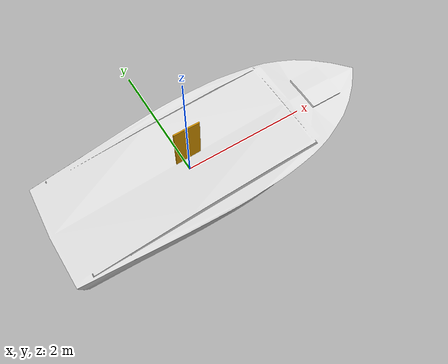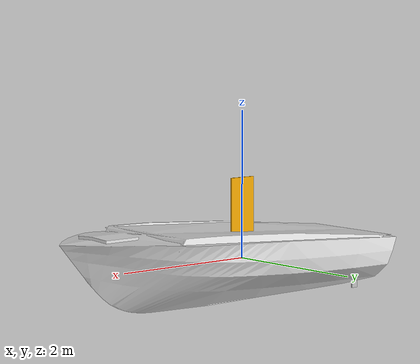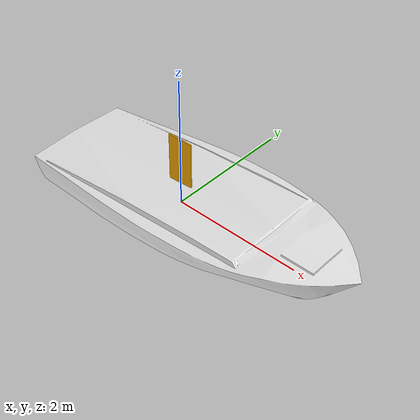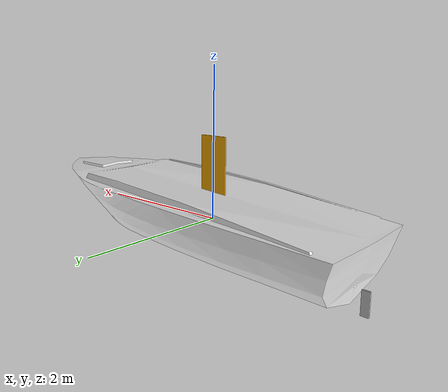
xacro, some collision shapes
<?xml version="1.0"?>

<robot name="sailboat" xmlns:xacro="http://www.ros.org/wiki/xacro">

    <xacro:include filename="$(find usv_sim)/xacro/boat_subdivided.xacro" />
    <xacro:rudder_xacro/>

    <!-- Defining sail model -->
    <link name="sail">
		<inertial>
			<mass value="0.1" />
			<inertia
			  ixx="0.4708"
			  ixy="0.0"
			  iyy="0.5208"
			  ixz="0.0"
			  iyz="0.0"
			  izz="0.0508"/>
		</inertial>

	    <collision name="collision">
            <geometry>
              <box size="0.4 0.02 1" />
            </geometry>
            <origin rpy="0 0 0" xyz="-0.2 0 0"/>
	    </collision>

	    <visual name="visual">
            <geometry>
              <box size="0.4 0.02 1" />
            </geometry>
            <origin rpy="0 0 0" xyz="-0.2 0 0"/>
	    </visual>
    </link>

    <joint name="sail_joint" type="revolute">
        <parent link="base_link"/>
        <child link="sail"/>
        <origin rpy="0 0 0" xyz="0.2 0 0.6"/>
        <dynamics damping="1.0"/>
        <axis xyz="0 0 1"/>
        <limit effort="0" velocity="5" lower="-${PI/2}" upper="${PI/2}" />
    </joint>

    <link name="keel">
        <inertial>
            <mass value="50" />
            <inertia
              ixx="0.05"
              ixy="0.0"
              iyy="0.05"
              ixz="0.0"
              iyz="0.0"
              izz="0.005"/>
        </inertial>

        <collision name="collision">
            <geometry>
              <box size="0.1 0.02 0.4" />
            </geometry>
            <origin rpy="0 0 0" xyz="0 0 0"/>
        </collision>

        <visual name="visual">
            <geometry>
              <box size="0.1 0.02 0.4" />
            </geometry>
            <origin rpy="0 0 0" xyz="0 0 0"/>
        </visual>
    </link>

    <joint name="keel_joint" type="revolute">
        <parent link="base_link"/>
        <child link="keel"/>
        <origin rpy="0 0 0" xyz="0 0 -0.2"/>
        <dynamics damping="1.0"/>
        <axis xyz="0 0 1"/>
        <limit effort="50" velocity="5" lower="0" upper="0" />
    </joint>

        <!-- Plugin list -->
  <gazebo>
        <plugin name="sail_plugin" filename="libsail_plugin.so">
            <a0>0</a0>
            <cla>2.752798721</cla>
            <cda>2.6417112299</cda>
            <cma>-1.8</cma>
            <alpha_stall>0.785</alpha_stall>
            <cla_stall>-3.85</cla_stall>
            <cda_stall>-0.9233984055</cda_stall>
            <cma_stall>0</cma_stall>
            <cp>-0.3 0 0</cp>
            <area>0.4</area>
            <air_density>1.2041</air_density>
            <forward>1 0 0</forward>
            <upward>0 1 0</upward>
            <link_name>sail</link_name>
            <joint_name>sail_joint</joint_name>
      </plugin>

      <plugin name="keel_plugin" filename="libkeel_plugin.so">

          <a0>0</a0>
          <cla>0.752798721</cla>
          <cda>0.3417112299</cda>
          <alpha_stall>0.785</alpha_stall>
          <cla_stall>-0.85</cla_stall>
          <cda_stall>-0.3233984055</cda_stall>

          <cp>0 0 0</cp>
          <area>0.1</area>
          <air_density>1000</air_density>
          <forward>1 0 0</forward>
          <upward>0 1 0</upward>
          <link_name>keel</link_name>
    </plugin>

    <plugin name="rudder_plugin" filename="librudder_plugin.so">

          <a0>0</a0>
          <cla>0.752798721</cla>
          <cda>0.3417112299</cda>
          <alpha_stall>0.785</alpha_stall>
          <cla_stall>-0.85</cla_stall>
          <cda_stall>-0.3233984055</cda_stall>

          <cp>0 0 0</cp>
          <area>0.1</area>
          <air_density>1000</air_density>
          <forward>1 0 0</forward>
          <upward>0 1 0</upward>
          <link_name>rudder</link_name>
      </plugin>

      <plugin name="freefloating_gazebo_control" filename="libfreefloating_gazebo_control.so">
          <switchService>switch</switchService>
          <updateRate>100</updateRate>
          <link>base_link</link>
      </plugin>

  </gazebo>

</robot>

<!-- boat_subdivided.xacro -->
<xacro xmlns:xacro="http://www.ros.org/wiki/xacro">

    <xacro:property name="PI" value="3.1415926535897931"/>

    <!-- Body properties -->
    <xacro:property name="front_body_mass" value="5"/>
    <xacro:property name="back_body_mass" value="15"/>
    <xacro:property name="middle_body_mass" value="5"/>
    <xacro:property name="rear_body_mass" value="5"/>
    <xacro:property name="front_body_mass" value="2"/>
    <xacro:property name="back_water_displaced_mass" value="40"/>
    <xacro:property name="middle_water_displaced_mass" value="60"/>
    <xacro:property name="front_water_displaced_mass" value="25"/>

    <!-- Thruster constants -->
    <xacro:property name="tr1" value=".02" />
    <xacro:property name="tl1" value=".1" />
    <xacro:property name="tr2" value=".05" />
    <xacro:property name="tl2" value=".03" />
    <xacro:property name="eps" value="0.00000001"/>

    <link name="base_link">
        <visual>
          <origin rpy="0 0 0" xyz="0 0 0"/>
          <geometry>
            <mesh filename="package://usv_sim/meshes/simpleHull/simpleHull.obj"/>

          </geometry>
          <material name="white"/>
        </visual>
        <collision>
          <origin rpy="0 0 1.57" xyz="0 0.44 0.1"/>
          <geometry>
            <mesh filename="package://usv_sim/meshes/simpleHull/centerLeft.stl"/>
          </geometry>
        </collision>

        <inertial>
            <origin rpy="0 0 0" xyz="0 0.44 0.1"/>
          <mass value="${middle_body_mass}"/>
          <inertia ixx="0.1" ixy="0.0" ixz="0.0" iyy="1.4" iyz="0.0" izz="1.4"/>
        </inertial>
        <buoyancy>
          <compensation>${middle_water_displaced_mass/middle_body_mass}</compensation>
          <origin xyz="0 0.44 0.15"/>
          <limit radius="0.1"/>
          <damping rpy="20 20 20" xyz="20 20 50"/>
	  <fluidVelocity>local</fluidVelocity>
        </buoyancy>
    </link>

    <link name="center_r_link">
        <collision>
          <origin rpy="0 0 1.57"  xyz="0 -0.22 0.05"/>
          <geometry>
           	<mesh filename="package://usv_sim/meshes/simpleHull/centerRight.stl"/>
          </geometry>
        </collision>

        <inertial>
            <origin rpy="0 0 0" xyz="0 -0.22 0.05"/>
          <mass value="${middle_body_mass}"/>
          <inertia ixx="0.1" ixy="0.0" ixz="0.0" iyy="1.4" iyz="0.0" izz="1.4"/>
        </inertial>
        <buoyancy>
          <compensation>${middle_water_displaced_mass/middle_body_mass}</compensation>
          <origin xyz="0 -0.22 0.1"/>
          <limit radius="0.1"/>
          <damping rpy="20 20 20" xyz="20 20 50"/>
	  <fluidVelocity>local</fluidVelocity>
        </buoyancy>
    </link>

    <joint name="center_r_joint" type="revolute">
        <parent link="base_link"/>
        <child link="center_r_link"/>
        <origin rpy="0 0 0" xyz="0 -0.22 0"/>
	<limit effort="50" velocity="5" lower="0" upper="0" />
            <dynamics damping="1.0"/>
            <axis xyz="1 0 0"/>
    </joint>

    <link name="back_l_link">
        <collision>
          <origin rpy="0 0 1.57"  xyz="-0.85 0.205 -0.2"/>
          <geometry>
           	<mesh filename="package://usv_sim/meshes/simpleHull/backLeft.stl"/>
          </geometry>
        </collision>

        <inertial>
            <origin rpy="0 0 0" xyz="-0.85 0.205 -0.2"/>
          <mass value="${back_body_mass}"/>
          <inertia ixx="0.1" ixy="0.0" ixz="0.0" iyy="1.4" iyz="0.0" izz="1.4"/>
        </inertial>
        <buoyancy>
          <compensation>${back_water_displaced_mass/back_body_mass}</compensation>
          <origin xyz="-0.85 0.205 -0.15"/>
          <limit radius="0.1"/>
          <damping rpy="20 20 20" xyz="20 20 50"/>
	  <fluidVelocity>local</fluidVelocity>
        </buoyancy>
    </link>

    <joint name="back_l_joint" type="revolute">
        <parent link="base_link"/>
        <child link="back_l_link"/>
        <origin rpy="0 0 0" xyz="-0.85 0.205 0"/>
	<limit effort="50" velocity="5" lower="0" upper="0" />
            <dynamics damping="1.0"/>
            <axis xyz="1 0 0"/>
    </joint>

    <link name="back_r_link">
        <collision>
          <origin rpy="0 0 1.57"  xyz="-0.85 -0.205 -0.2"/>
          <geometry>
           	<mesh filename="package://usv_sim/meshes/simpleHull/backRight.stl"/>
          </geometry>
        </collision>

        <inertial>
            <origin rpy="0 0 0" xyz="-0.85 -0.205 -0.2"/>
          <mass value="${back_body_mass}"/>
          <inertia ixx="0.1" ixy="0.0" ixz="0.0" iyy="1.4" iyz="0.0" izz="1.4"/>
        </inertial>
        <buoyancy>
          <compensation>${back_water_displaced_mass/back_body_mass}</compensation>
          <origin xyz="-0.85 -0.205 -0.15"/>
          <limit radius="0.1"/>
          <damping rpy="20 20 20" xyz="20 20 50"/>
	  <fluidVelocity>local</fluidVelocity>
        </buoyancy>
    </link>

    <joint name="back_r_joint" type="revolute">
        <parent link="base_link"/>
        <child link="back_r_link"/>
        <origin rpy="0 0 0" xyz="-0.85 -0.205 0"/>
	<limit effort="50" velocity="5" lower="0" upper="0" />
            <dynamics damping="1.0"/>
            <axis xyz="1 0 0"/>
    </joint>

    <link name="front_l_link">
        <collision>
          <origin rpy="0 0 1.57"  xyz="0.85 0.17 0.2"/>
          <geometry>
           	<mesh filename="package://usv_sim/meshes/simpleHull/frontLeft.stl"/>
          </geometry>
        </collision>

        <inertial>
            <origin rpy="0 0 0" xyz="0.85 0.17 -0.1"/>
          <mass value="${front_body_mass}"/>
          <inertia ixx="0.1" ixy="0.0" ixz="0.0" iyy="1.4" iyz="0.0" izz="1.4"/>
        </inertial>
        <buoyancy>
          <compensation>${front_water_displaced_mass/front_body_mass}</compensation>
          <origin xyz="0.85 0.17 -0.05"/>
          <limit radius="0.1"/>
          <damping rpy="20 20 20" xyz="20 20 50"/>
	  <fluidVelocity>local</fluidVelocity>
        </buoyancy>
    </link>

    <joint name="front_l_joint" type="revolute">
        <parent link="base_link"/>
        <child link="front_l_link"/>
        <origin rpy="0 0 0" xyz="0.85 0.17 0"/>
	<limit effort="50" velocity="5" lower="0" upper="0" />
            <dynamics damping="1.0"/>
            <axis xyz="1 0 0"/>
    </joint>

    <link name="front_r_link">
        <collision>
          <origin rpy="0 0 1.57"  xyz="0.85 -0.17 0.2"/>
          <geometry>
           	<mesh filename="package://usv_sim/meshes/simpleHull/frontRight.stl"/>
          </geometry>
        </collision>

        <inertial>
            <origin rpy="0 0 0" xyz="0.85 -0.17 -0.1"/>
          <mass value="${front_body_mass}"/>
          <inertia ixx="0.1" ixy="0.0" ixz="0.0" iyy="1.4" iyz="0.0" izz="1.4"/>
        </inertial>
        <buoyancy>
          <compensation>${front_water_displaced_mass/front_body_mass}</compensation>
          <origin xyz="0.85 -0.17 -0.05"/>
          <limit radius="0.1"/>
          <damping rpy="20 20 20" xyz="20 20 50"/>
	  <fluidVelocity>local</fluidVelocity>
        </buoyancy>
    </link>

    <joint name="front_r_joint" type="revolute">
        <parent link="base_link"/>
        <child link="front_r_link"/>
        <origin rpy="0 0 0" xyz="0.85 -0.17 0"/>
	<limit effort="50" velocity="5" lower="0" upper="0" />
            <dynamics damping="1.0"/>
            <axis xyz="1 0 0"/>
    </joint>

    <!-- Thruster link -->
    <xacro:macro name="thruster_link" params="name xyz rpy rotationAxis effort:=50 velocity:=5 lowerLimit upperLimit parentLink:=back_r_link">
        <joint name="${name}_joint" type="revolute">
            <parent link="${parentLink}"/>
            <child link="${name}"/>
            <origin rpy="${rpy}" xyz="${xyz}"/>
            <dynamics damping="10.0"/>
            <axis xyz="${rotationAxis}"/>
            <limit effort="${effort}" velocity="${velocity}" lower="${lowerLimit}" upper="${upperLimit}" />
        </joint>

        <link name="${name}">
            <buoyancy>
				<compensation>1.0</compensation>
	        	<fluidVelocity>local</fluidVelocity>
	    	</buoyancy>
	    	<collision>
          		<origin xyz="0 0 0" rpy="0 0 0"/>
          		<geometry>
          			<box size="tl1 tl1 tl2" />
          		</geometry>
        	</collision>

            <visual name="${name}">
                <origin xyz="0 0 0" rpy="0 0 0" />
                <geometry>
                    <mesh filename="package://usv_sim/meshes/simpleHull/thruster.obj"/>
                </geometry>
                <material name="black">
                    <color rgba="255 255 255 1"/>
                </material>
            </visual>

            <inertial>
                <mass value=".1"/>
                <inertia
                    ixx=".1"
                    ixy="0.0"
                    ixz="0.0"
                    iyy=".1"
                    iyz="0.0"
                    izz=".1"/>
            </inertial>
        </link>

        <gazebo reference="${name}">
            <material>Gazebo/Black</material>
        </gazebo>
    </xacro:macro>

    <xacro:macro name="thruster_dummy_link" params="name xyz rpy">
        <joint name="${name}" type="fixed">
            <parent link="base_link"/>
            <child link="${name}"/>
            <origin rpy="${rpy}" xyz="${xyz}"/>
        </joint>
        <link name="${name}"/>
    </xacro:macro>

    <!-- Rudder link -->
    <xacro:macro name="rudder_xacro">
        <link name="rudder">
            <inertial>
                <mass value="0.05" />
                <inertia
                  ixx="0.05"
                  ixy="0.0"
                  iyy="0.05"
                  ixz="0.0"
                  iyz="0.0"
                  izz="0.005"/>
            </inertial>

            <collision name="collision">
                <geometry>
                  <box size="0.2 0.02 0.3" />
                </geometry>
                <origin rpy="0 0 0" xyz="-0.1 0 0"/>
            </collision>

            <visual name="visual">
                <geometry>
                  <box size="0.1 0.02 0.3" />
                </geometry>
                <origin rpy="0 0 0" xyz="-0.1 0 0"/>
            </visual>
        </link>

        <joint name="rudder_joint" type="revolute">
            <parent link="back_r_link"/>
            <child link="rudder"/>
            <origin rpy="0 0 0" xyz="-1.2 0.22 -0.5"/>
            <dynamics damping="1.0"/>
            <axis xyz="0 0 1"/>
            <limit effort="50" velocity="5" lower="-${PI/3}" upper="${PI/3}" />
        </joint>
    </xacro:macro>

    <!-- Sensors -->

    <!-- Hokuyo Laser -->
    <joint name="hokuyo_joint" type="fixed">
        <axis xyz="0 1 0" />
        <origin xyz="0.7 0 0.1" rpy="0 0 0"/>
        <parent link="base_link"/>
        <child link="hokuyo_link"/>
    </joint>

    <link name="hokuyo_link">
        <collision>
        <origin xyz="0 0 0" rpy="0 0 0"/>
        <geometry>
        <box size="0.1 0.1 0.1"/>
        </geometry>
        </collision>

        <visual>
        <origin xyz="0 0 0" rpy="0 0 0"/>
        <geometry>
        <mesh filename="package://usv_sim/meshes/hokuyo.stl"/>
        </geometry>
        </visual>

        <inertial>
        <mass value="1e-5" />
        <origin xyz="0 0 0" rpy="0 0 0"/>
        <inertia ixx="1e-6" ixy="0" ixz="0" iyy="1e-6" iyz="0" izz="1e-6" />
        </inertial>
    </link>

    <gazebo reference="hokuyo_link">
        <sensor type="gpu_ray" name="head_hokuyo_sensor">
        <pose>0 0 0 0 0 0</pose>
        <visualize>true</visualize>
        <update_rate>40</update_rate>
        <ray>
        <scan>
        <horizontal>
        <samples>720</samples>
        <resolution>1</resolution>
        <min_angle>-1.570796</min_angle>
        <max_angle>1.570796</max_angle>
        </horizontal>
        </scan>
        <range>
        <min>0.10</min>
        <max>30.0</max>
        <resolution>0.01</resolution>
        </range>
        <noise>
        <type>gaussian</type>
        <mean>0.0</mean>
        <stddev>0.01</stddev>
        </noise>
        </ray>
        <plugin name="gazebo_ros_head_hokuyo_controller" filename="libgazebo_ros_gpu_laser.so">
        <topicName>scan</topicName>
        <frameName>base_laser</frameName>
        </plugin>
        </sensor>
    </gazebo>

</xacro>
